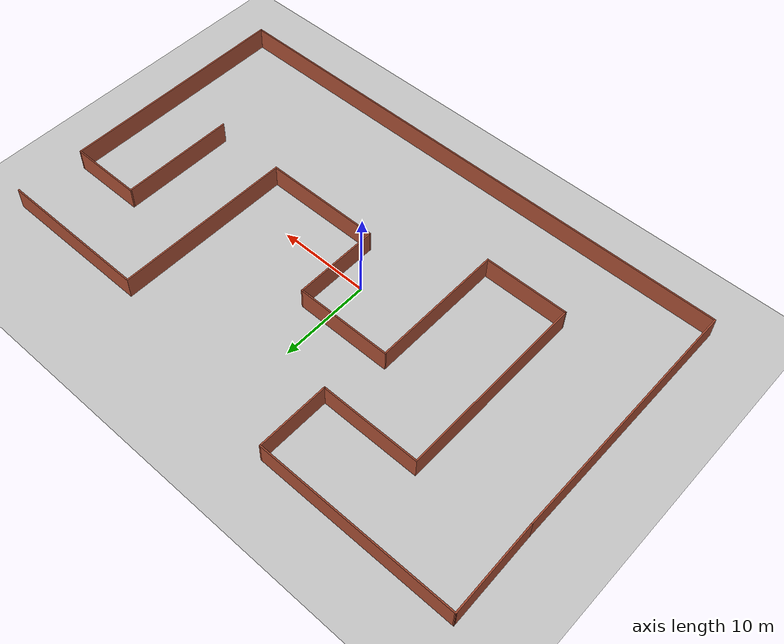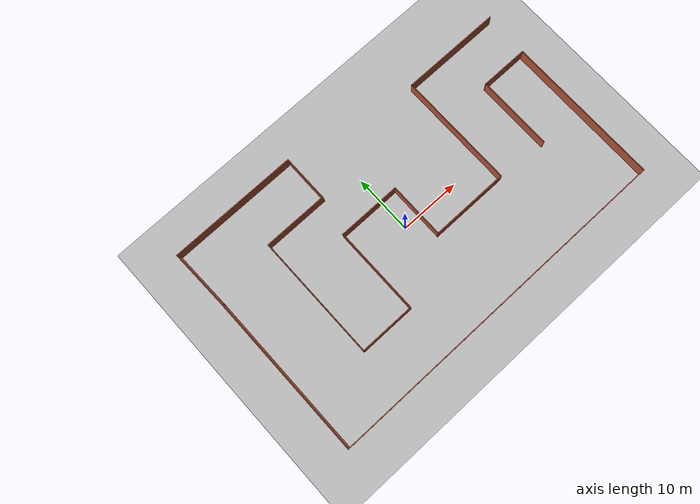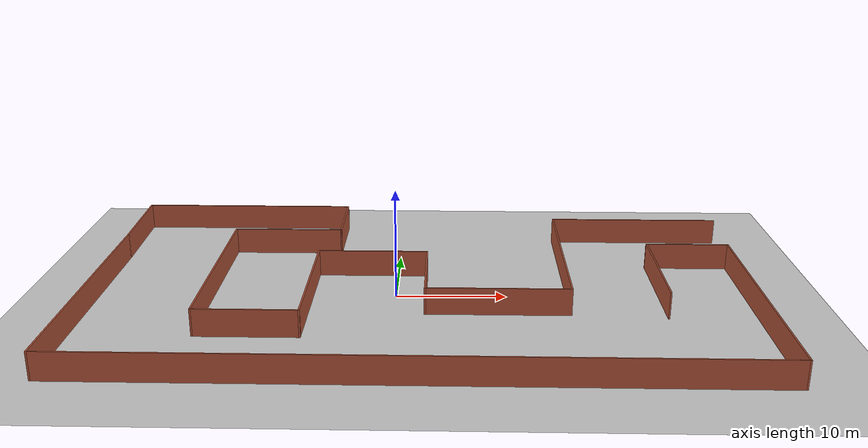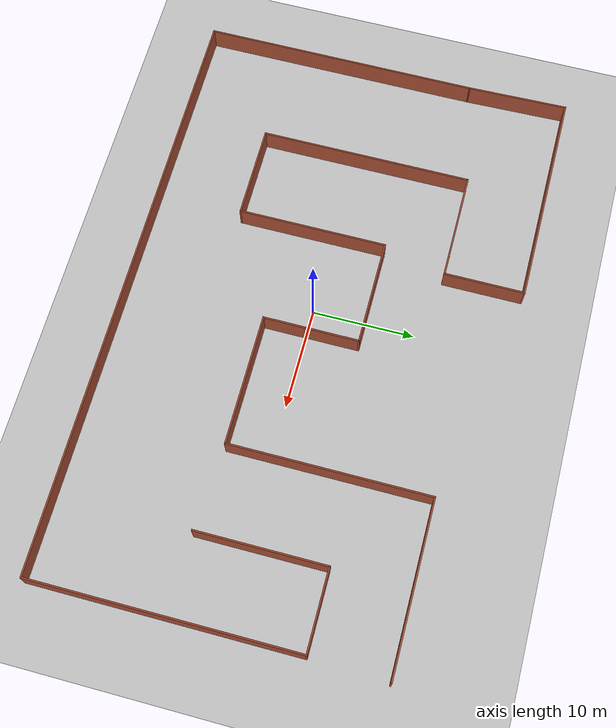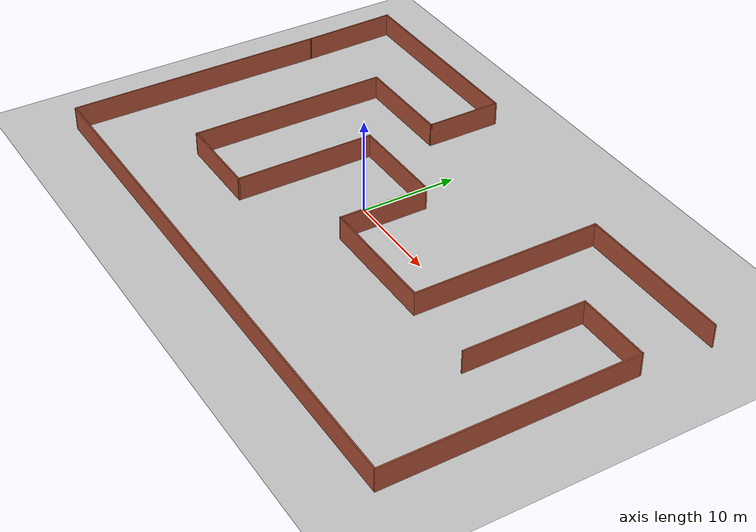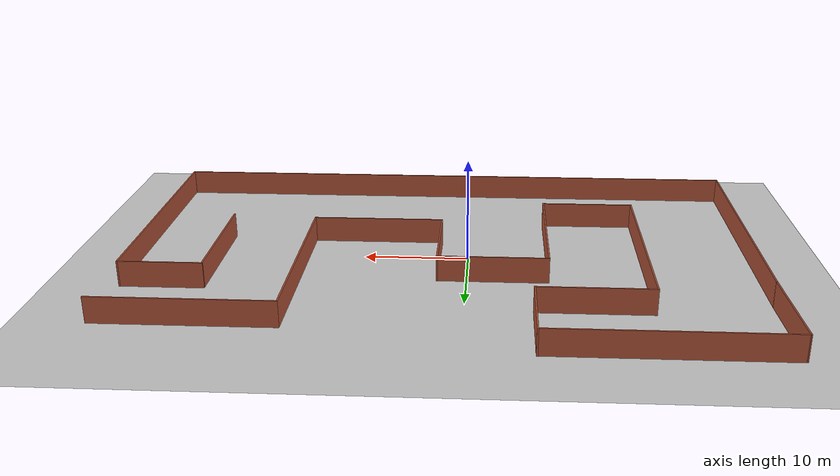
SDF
<sdf version="1.6">
 <world name="default">
  <light name="sun" type="directional">
   <pose>0 0 10 0 -0 0</pose>
   <diffuse>0.8 0.8 0.8 1</diffuse>
   <specular>0.2 0.2 0.2 1</specular>
   <attenuation>
    <range>1000</range>
    <constant>0.9</constant>
    <linear>0.01</linear>
    <quadratic>0.001</quadratic>
   </attenuation>
   <direction>-0.5 0.1 -0.9</direction>
  </light>
  <model name="ground_plane">
   <static>1</static>
   <link name="link">
    <collision name="collision">
     <geometry><plane><normal>0 0 1</normal><size>100 100</size></plane></geometry>
     <surface>
      <contact><collide_bitmask>65535</collide_bitmask></contact>
      <friction><ode><mu>100</mu><mu2>50</mu2></ode></friction>
     </surface>
    </collision>
    <visual name="visual">
     <cast_shadows>0</cast_shadows>
     <geometry><plane><normal>0 0 1</normal><size>100 100</size></plane></geometry>
     <material>
      <script><uri>file://media/materials/scripts/gazebo.material</uri><name>Gazebo/Grey</name></script>
     </material>
    </visual>
   </link>
  </model>
  <gravity>0 0 -9.8</gravity>
  <magnetic_field>6e-06 2.3e-05 -4.2e-05</magnetic_field>
  <atmosphere type="adiabatic"/>
  <physics name="default_physics" default="0" type="ode">
   <max_step_size>0.001</max_step_size>
   <real_time_factor>1</real_time_factor>
   <real_time_update_rate>1000</real_time_update_rate>
  </physics>
  <scene><ambient>0.4 0.4 0.4 1</ambient><background>0.7 0.7 0.7 1</background><shadows>1</shadows></scene>
  <audio><device>default</device></audio>
  <spherical_coordinates>
   <surface_model>EARTH_WGS84</surface_model>
   <latitude_deg>0</latitude_deg>
   <longitude_deg>0</longitude_deg>
   <elevation>0</elevation>
   <heading_deg>0</heading_deg>
  </spherical_coordinates>
  <model name="mgbot3_room">
   <pose>2.33284 0.666968 0 0 -0 0</pose>
   <link name="Wall_13">
    <collision name="Wall_13_Collision">
     <geometry><box><size>27.5 0.15 2.5</size></box></geometry>
     <pose>0 0 1.25 0 -0 0</pose>
    </collision>
    <visual name="Wall_13_Visual">
     <pose>0 0 1.25 0 -0 0</pose>
     <geometry><box><size>27.5 0.15 2.5</size></box></geometry>
     <material>
      <script><uri>file://media/materials/scripts/gazebo.material</uri><name>Gazebo/Bricks</name></script>
      <ambient>1 1 1 1</ambient>
     </material>
     <meta><layer>0</layer></meta>
    </visual>
    <pose>-29.587 -4.95633 0 0 -0 -1.5708</pose>
   </link>
   <link name="Wall_14">
    <collision name="Wall_14_Collision">
     <geometry><box><size>59.25 0.15 2.5</size></box></geometry>
     <pose>0 0 1.25 0 -0 0</pose>
    </collision>
    <visual name="Wall_14_Visual">
     <pose>0 0 1.25 0 -0 0</pose>
     <geometry><box><size>59.25 0.15 2.5</size></box></geometry>
     <material>
      <script><uri>file://media/materials/scripts/gazebo.material</uri><name>Gazebo/Bricks</name></script>
      <ambient>1 1 1 1</ambient>
     </material>
     <meta><layer>0</layer></meta>
    </visual>
    <pose>-0.036998 -18.6313 0 0 -0 0</pose>
   </link>
   <link name="Wall_15">
    <collision name="Wall_15_Collision">
     <geometry><box><size>26 0.15 2.5</size></box></geometry>
     <pose>0 0 1.25 0 -0 0</pose>
    </collision>
    <visual name="Wall_15_Visual">
     <pose>0 0 1.25 0 -0 0</pose>
     <geometry><box><size>26 0.15 2.5</size></box></geometry>
     <material>
      <script><uri>file://media/materials/scripts/gazebo.material</uri><name>Gazebo/Bricks</name></script>
      <ambient>1 1 1 1</ambient>
     </material>
     <meta><layer>0</layer></meta>
    </visual>
    <pose>29.513 -5.70633 0 0 -0 1.5708</pose>
   </link>
   <link name="Wall_16">
    <collision name="Wall_16_Collision">
     <geometry><box><size>8 0.15 2.5</size></box></geometry>
     <pose>0 0 1.25 0 -0 0</pose>
    </collision>
    <visual name="Wall_16_Visual">
     <pose>0 0 1.25 0 -0 0</pose>
     <geometry><box><size>8 0.15 2.5</size></box></geometry>
     <material>
      <script><uri>file://media/materials/scripts/gazebo.material</uri><name>Gazebo/Bricks</name></script>
      <ambient>1 1 1 1</ambient>
     </material>
     <meta><layer>0</layer></meta>
    </visual>
    <pose>25.588 7.21867 0 0 -0 3.14159</pose>
   </link>
   <link name="Wall_17">
    <collision name="Wall_17_Collision">
     <geometry><box><size>12.75 0.15 2.5</size></box></geometry>
     <pose>0 0 1.25 0 -0 0</pose>
    </collision>
    <visual name="Wall_17_Visual">
     <pose>0 0 1.25 0 -0 0</pose>
     <geometry><box><size>12.75 0.15 2.5</size></box></geometry>
     <material>
      <script><uri>file://media/materials/scripts/gazebo.material</uri><name>Gazebo/Bricks</name></script>
      <ambient>1 1 1 1</ambient>
     </material>
     <meta><layer>0</layer></meta>
    </visual>
    <pose>21.663 0.918674 0 0 -0 -1.5708</pose>
   </link>
   <link name="Wall_19">
    <collision name="Wall_19_Collision">
     <geometry><box><size>19.75 0.15 2.5</size></box></geometry>
     <pose>0 0 1.25 0 -0 0</pose>
    </collision>
    <visual name="Wall_19_Visual">
     <pose>0 0 1.25 0 -0 0</pose>
     <geometry><box><size>19.75 0.15 2.5</size></box></geometry>
     <material>
      <script><uri>file://media/materials/scripts/gazebo.material</uri><name>Gazebo/Bricks</name></script>
      <ambient>1 1 1 1</ambient>
     </material>
     <meta><layer>0</layer></meta>
    </visual>
    <pose>13.2259 4.97956 0 0 -0 1.5708</pose>
   </link>
   <link name="Wall_20">
    <collision name="Wall_20_Collision">
     <geometry><box><size>16.75 0.15 2.5</size></box></geometry>
     <pose>0 0 1.25 0 -0 0</pose>
    </collision>
    <visual name="Wall_20_Visual">
     <pose>0 0 1.25 0 -0 0</pose>
     <geometry><box><size>16.75 0.15 2.5</size></box></geometry>
     <material>
      <script><uri>file://media/materials/scripts/gazebo.material</uri><name>Gazebo/Bricks</name></script>
      <ambient>1 1 1 1</ambient>
     </material>
     <meta><layer>0</layer></meta>
    </visual>
    <pose>21.5259 14.7796 0 0 -0 0</pose>
   </link>
   <link name="Wall_22">
    <collision name="Wall_22_Collision">
     <geometry><box><size>13 0.15 2.5</size></box></geometry>
     <pose>0 0 1.25 0 -0 0</pose>
    </collision>
    <visual name="Wall_22_Visual">
     <pose>0 0 1.25 0 -0 0</pose>
     <geometry><box><size>13 0.15 2.5</size></box></geometry>
     <material>
      <script><uri>file://media/materials/scripts/gazebo.material</uri><name>Gazebo/Bricks</name></script>
      <ambient>1 1 1 1</ambient>
     </material>
     <meta><layer>0</layer></meta>
    </visual>
    <pose>6.80089 -4.82044 0 0 -0 3.14159</pose>
   </link>
   <link name="Wall_23">
    <collision name="Wall_23_Collision">
     <geometry><box><size>9.5 0.15 2.5</size></box></geometry>
     <pose>0 0 1.25 0 -0 0</pose>
    </collision>
    <visual name="Wall_23_Visual">
     <pose>0 0 1.25 0 -0 0</pose>
     <geometry><box><size>9.5 0.15 2.5</size></box></geometry>
     <material>
      <script><uri>file://media/materials/scripts/gazebo.material</uri><name>Gazebo/Bricks</name></script>
      <ambient>1 1 1 1</ambient>
     </material>
     <meta><layer>0</layer></meta>
    </visual>
    <pose>0.375885 -0.145443 0 0 -0 1.5708</pose>
   </link>
   <link name="Wall_24">
    <collision name="Wall_24_Collision">
     <geometry><box><size>10.5 0.15 2.5</size></box></geometry>
     <pose>0 0 1.25 0 -0 0</pose>
    </collision>
    <visual name="Wall_24_Visual">
     <pose>0 0 1.25 0 -0 0</pose>
     <geometry><box><size>10.5 0.15 2.5</size></box></geometry>
     <material>
      <script><uri>file://media/materials/scripts/gazebo.material</uri><name>Gazebo/Bricks</name></script>
      <ambient>1 1 1 1</ambient>
     </material>
     <meta><layer>0</layer></meta>
    </visual>
    <pose>-4.79911 4.52956 0 0 -0 3.14159</pose>
   </link>
   <link name="Wall_25">
    <collision name="Wall_25_Collision">
     <geometry><box><size>14.75 0.15 2.5</size></box></geometry>
     <pose>0 0 1.25 0 -0 0</pose>
    </collision>
    <visual name="Wall_25_Visual">
     <pose>0 0 1.25 0 -0 0</pose>
     <geometry><box><size>14.75 0.15 2.5</size></box></geometry>
     <material>
      <script><uri>file://media/materials/scripts/gazebo.material</uri><name>Gazebo/Bricks</name></script>
      <ambient>1 1 1 1</ambient>
     </material>
     <meta><layer>0</layer></meta>
    </visual>
    <pose>-9.97411 -2.77044 0 0 -0 -1.5708</pose>
   </link>
   <link name="Wall_26">
    <collision name="Wall_26_Collision">
     <geometry><box><size>9.25 0.15 2.5</size></box></geometry>
     <pose>0 0 1.25 0 -0 0</pose>
    </collision>
    <visual name="Wall_26_Visual">
     <pose>0 0 1.25 0 -0 0</pose>
     <geometry><box><size>9.25 0.15 2.5</size></box></geometry>
     <material>
      <script><uri>file://media/materials/scripts/gazebo.material</uri><name>Gazebo/Bricks</name></script>
      <ambient>1 1 1 1</ambient>
     </material>
     <meta><layer>0</layer></meta>
    </visual>
    <pose>-14.5241 -10.0704 0 0 -0 3.14159</pose>
   </link>
   <link name="Wall_27">
    <collision name="Wall_27_Collision">
     <geometry><box><size>21 0.15 2.5</size></box></geometry>
     <pose>0 0 1.25 0 -0 0</pose>
    </collision>
    <visual name="Wall_27_Visual">
     <pose>0 0 1.25 0 -0 0</pose>
     <geometry><box><size>21 0.15 2.5</size></box></geometry>
     <material>
      <script><uri>file://media/materials/scripts/gazebo.material</uri><name>Gazebo/Bricks</name></script>
      <ambient>1 1 1 1</ambient>
     </material>
     <meta><layer>0</layer></meta>
    </visual>
    <pose>-19.0741 0.354557 0 0 -0 1.5708</pose>
   </link>
   <link name="Wall_28">
    <collision name="Wall_28_Collision">
     <geometry><box><size>10.75 0.15 2.5</size></box></geometry>
     <pose>0 0 1.25 0 -0 0</pose>
    </collision>
    <visual name="Wall_28_Visual">
     <pose>0 0 1.25 0 -0 0</pose>
     <geometry><box><size>10.75 0.15 2.5</size></box></geometry>
     <material>
      <script><uri>file://media/materials/scripts/gazebo.material</uri><name>Gazebo/Bricks</name></script>
      <ambient>1 1 1 1</ambient>
     </material>
     <meta><layer>0</layer></meta>
    </visual>
    <pose>-13.7741 10.7796 0 0 -0 0</pose>
   </link>
   <link name="Wall_29">
    <collision name="Wall_29_Collision">
     <geometry><box><size>8 0.15 2.5</size></box></geometry>
     <pose>0 0 1.25 0 -0 0</pose>
    </collision>
    <visual name="Wall_29_Visual">
     <pose>0 0 1.25 0 -0 0</pose>
     <geometry><box><size>8 0.15 2.5</size></box></geometry>
     <material>
      <script><uri>file://media/materials/scripts/gazebo.material</uri><name>Gazebo/Bricks</name></script>
      <ambient>1 1 1 1</ambient>
     </material>
     <meta><layer>0</layer></meta>
    </visual>
    <pose>-8.47411 14.7046 0 0 -0 1.5708</pose>
   </link>
   <link name="Wall_30">
    <collision name="Wall_30_Collision">
     <geometry><box><size>21.5 0.15 2.5</size></box></geometry>
     <pose>0 0 1.25 0 -0 0</pose>
    </collision>
    <visual name="Wall_30_Visual">
     <pose>0 0 1.25 0 -0 0</pose>
     <geometry><box><size>21.5 0.15 2.5</size></box></geometry>
     <material>
      <script><uri>file://media/materials/scripts/gazebo.material</uri><name>Gazebo/Bricks</name></script>
      <ambient>1 1 1 1</ambient>
     </material>
     <meta><layer>0</layer></meta>
    </visual>
    <pose>-19.1491 18.6296 0 0 -0 3.14159</pose>
   </link>
   <link name="Wall_31">
    <collision name="Wall_31_Collision">
     <geometry><box><size>10.0637 0.15 2.5</size></box></geometry>
     <pose>0 0 1.25 0 -0 0</pose>
    </collision>
    <visual name="Wall_31_Visual">
     <pose>0 0 1.25 0 -0 0</pose>
     <geometry><box><size>10.0637 0.15 2.5</size></box></geometry>
     <material>
      <script><uri>file://media/materials/scripts/gazebo.material</uri><name>Gazebo/Bricks</name></script>
      <ambient>1 1 1 1</ambient>
     </material>
     <meta><layer>0</layer></meta>
    </visual>
    <pose>-29.7056 13.6741 0 0 -0 -1.54688</pose>
   </link>
   <static>1</static>
  </model>
 </world>
</sdf>
